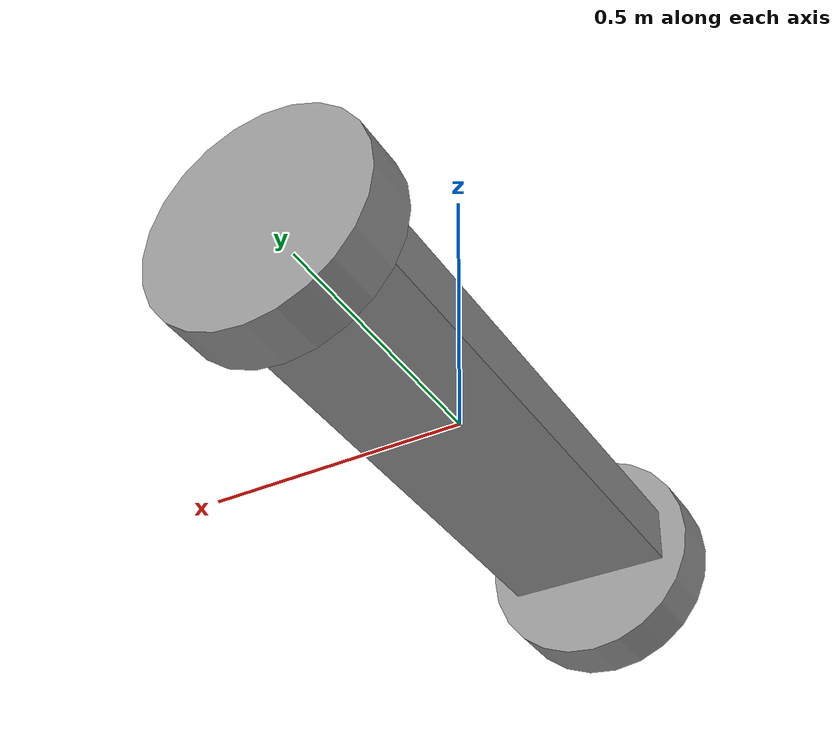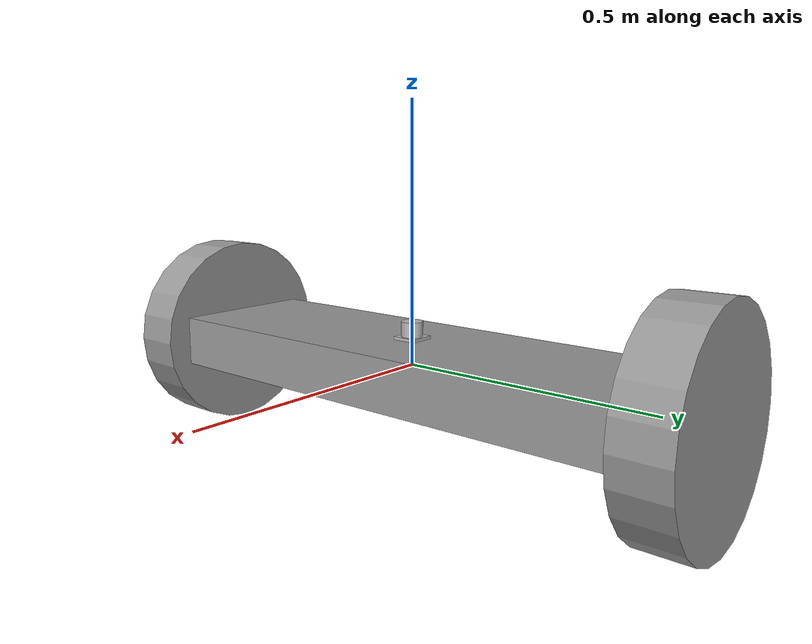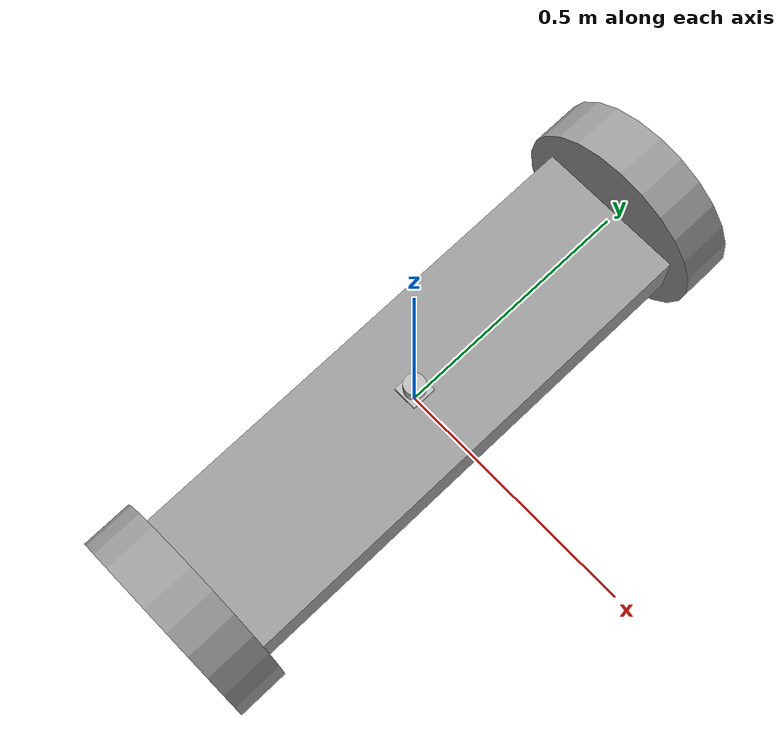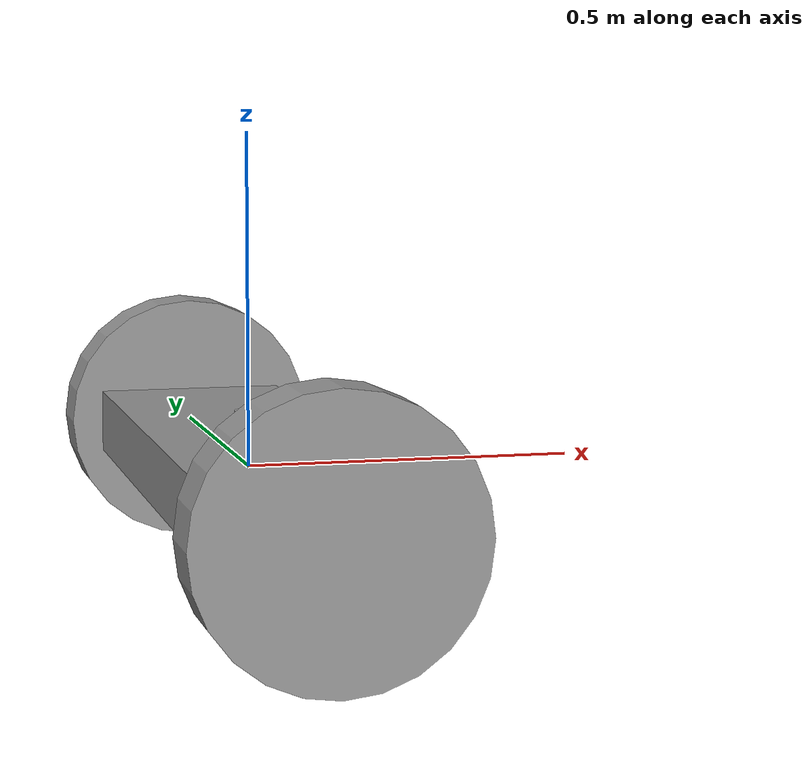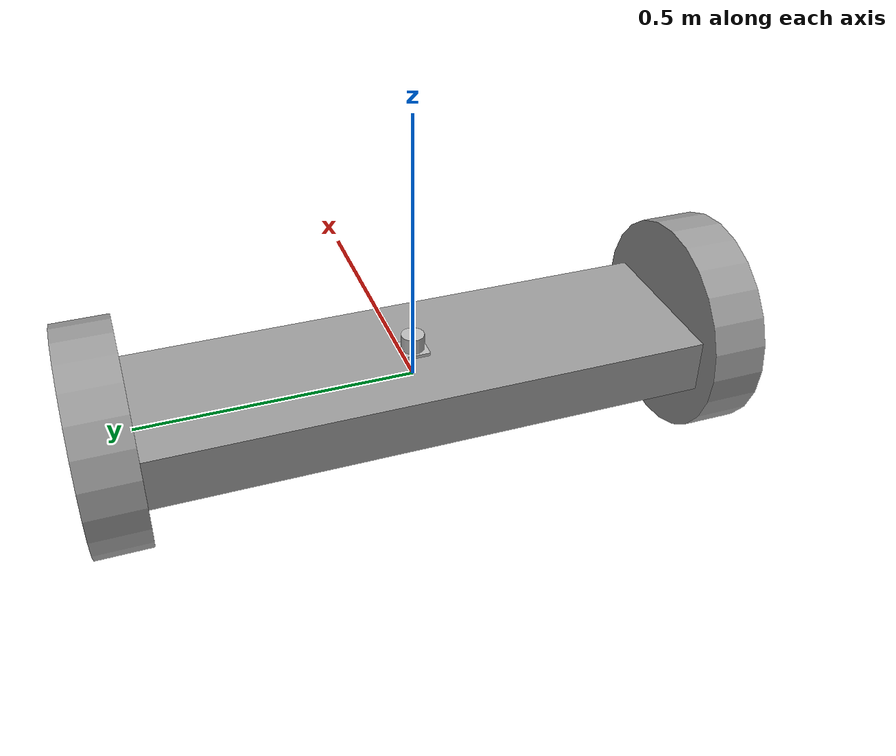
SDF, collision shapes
<?xml version='1.0'?>
<sdf version='1.6'>
  <model name='Sensor_mobile'>
    <link name='link_0'>
      <pose frame=''>0 0 0 0 -0 0</pose>
      <inertial>
        <mass>1</mass>
        <inertia>
          <ixx>0.166667</ixx>
          <ixy>0</ixy>
          <ixz>0</ixz>
          <iyy>0.166667</iyy>
          <iyz>0</iyz>
          <izz>0.166667</izz>
        </inertia>
        <pose frame=''>0 0 0 0 -0 0</pose>
      </inertial>
      <gravity>1</gravity>
      <self_collide>0</self_collide>
      <kinematic>0</kinematic>
      <visual name='visual'>
        <pose frame=''>0 0 0 0 -0 0</pose>
        <geometry>
          <box>
            <size>0.3 1 0.1</size>
          </box>
        </geometry>
        <material>
          <lighting>1</lighting>
          <script>
            <uri>file://media/materials/scripts/gazebo.material</uri>
            <name>Gazebo/Grey</name>
          </script>
          <ambient>0.3 0.3 0.3 1</ambient>
          <diffuse>0.7 0.7 0.7 1</diffuse>
          <specular>0.01 0.01 0.01 1</specular>
          <emissive>0 0 0 1</emissive>
          <shader type='vertex'>
            <normal_map>__default__</normal_map>
          </shader>
        </material>
        <transparency>0</transparency>
        <cast_shadows>1</cast_shadows>
      </visual>
      <collision name='collision'>
        <laser_retro>0</laser_retro>
        <max_contacts>10</max_contacts>
        <pose frame=''>0 0 0 0 -0 0</pose>
        <geometry>
          <box>
            <size>0.3 1 0.1</size>
          </box>
        </geometry>
        <surface>
          <friction>
            <ode>
              <mu>1</mu>
              <mu2>1</mu2>
              <fdir1>0 0 0</fdir1>
              <slip1>0</slip1>
              <slip2>0</slip2>
            </ode>
            <torsional>
              <coefficient>1</coefficient>
              <patch_radius>0</patch_radius>
              <surface_radius>0</surface_radius>
              <use_patch_radius>1</use_patch_radius>
              <ode>
                <slip>0</slip>
              </ode>
            </torsional>
          </friction>
          <bounce>
            <restitution_coefficient>0</restitution_coefficient>
            <threshold>1e+06</threshold>
          </bounce>
          <contact>
            <collide_without_contact>0</collide_without_contact>
            <collide_without_contact_bitmask>1</collide_without_contact_bitmask>
            <collide_bitmask>1</collide_bitmask>
            <ode>
              <soft_cfm>0</soft_cfm>
              <soft_erp>0.2</soft_erp>
              <kp>1e+13</kp>
              <kd>1</kd>
              <max_vel>0.01</max_vel>
              <min_depth>0</min_depth>
            </ode>
            <bullet>
              <split_impulse>1</split_impulse>
              <split_impulse_penetration_threshold>-0.01</split_impulse_penetration_threshold>
              <soft_cfm>0</soft_cfm>
              <soft_erp>0.2</soft_erp>
              <kp>1e+13</kp>
              <kd>1</kd>
            </bullet>
          </contact>
        </surface>
      </collision>
    </link>
    <link name='link_2'>
      <pose frame=''>0 -0.550019 0 1.5707 -0 0</pose>
      <inertial>
        <mass>1</mass>link
        <inertia>
          <ixx>0.145833</ixx>
          <ixy>0</ixy>
          <ixz>0</ixz>
          <iyy>0.145833</iyy>
          <iyz>0</iyz>
          <izz>0.125</izz>
        </inertia>
        <pose frame=''>0 0 0 0 -0 0</pose>
      </inertial>
      <gravity>1</gravity>
      <self_collide>0</self_collide>
      <kinematic>0</kinematic>
      <visual name='visual'>
        <pose frame=''>0 0 0 0 -0 0</pose>
        <geometry>
          <cylinder>
            <radius>0.2</radius>
            <length>0.1</length>
          </cylinder>
        </geometry>
        <material>
          <lighting>1</lighting>
          <script>
            <uri>file://media/materials/scripts/gazebo.material</uri>
            <name>Gazebo/Grey</name>
          </script>
          <ambient>0.3 0.3 0.3 1</ambient>
          <diffuse>0.7 0.7 0.7 1</diffuse>
          <specular>0.01 0.01 0.01 1</specular>
          <emissive>0 0 0 1</emissive>
          <shader type='vertex'>
            <normal_map>__default__</normal_map>
          </shader>
        </material>
        <transparency>0</transparency>
        <cast_shadows>1</cast_shadows>
      </visual>
      <collision name='collision'>
        <laser_retro>0</laser_retro>
        <max_contacts>10</max_contacts>
        <pose frame=''>0 0 0 0 -0 0</pose>
        <geometry>
          <cylinder>
            <radius>0.2</radius>
            <length>0.1</length>
          </cylinder>
        </geometry>
        <surface>
          <friction>
            <ode>
              <mu>1</mu>
              <mu2>1</mu2>
              <fdir1>0 0 0</fdir1>
              <slip1>0</slip1>
              <slip2>0</slip2>
            </ode>
            <torsional>
              <coefficient>1</coefficient>
              <patch_radius>0</patch_radius>
              <surface_radius>0</surface_radius>
              <use_patch_radius>1</use_patch_radius>
              <ode>
                <slip>0</slip>
              </ode>
            </torsional>
          </friction>
          <bounce>
            <restitution_coefficient>0</restitution_coefficient>
            <threshold>1e+06</threshold>
          </bounce>
          <contact>
            <collide_without_contact>0</collide_without_contact>
            <collide_without_contact_bitmask>1</collide_without_contact_bitmask>
            <collide_bitmask>1</collide_bitmask>
            <ode>
              <soft_cfm>0</soft_cfm>
              <soft_erp>0.2</soft_erp>
              <kp>1e+13</kp>
              <kd>1</kd>
              <max_vel>0.01</max_vel>
              <min_depth>0</min_depth>
            </ode>
            <bullet>
              <split_impulse>1</split_impulse>
              <split_impulse_penetration_threshold>-0.01</split_impulse_penetration_threshold>
              <soft_cfm>0</soft_cfm>
              <soft_erp>0.2</soft_erp>
              <kp>1e+13</kp>
              <kd>1</kd>
            </bullet>
          </contact>
        </surface>
      </collision>
    </link>
    <link name='link_2_clone'>
      <pose frame=''>0 0.550019 0 1.5707 -0 0</pose>
      <inertial>
        <mass>1</mass>
        <inertia>
          <ixx>0.145833</ixx>
          <ixy>0</ixy>
          <ixz>0</ixz>
          <iyy>0.145833</iyy>
          <iyz>0</iyz>
          <izz>0.125</izz>
        </inertia>
        <pose frame=''>0 0 0 0 -0 0</pose>
      </inertial>
      <self_collide>0</self_collide>
      <kinematic>0</kinematic>
      <visual name='visual'>
        <pose frame=''>0 0 0 0 -0 0</pose>
        <geometry>
          <cylinder>
            <radius>0.2</radius>
            <length>0.1</length>
          </cylinder>
        </geometry>
        <material>
          <lighting>1</lighting>
          <script>
            <uri>file://media/materials/scripts/gazebo.material</uri>
            <name>Gazebo/Grey</name>
          </script>
          <ambient>0.3 0.3 0.3 1</ambient>
          <diffuse>0.7 0.7 0.7 1</diffuse>
          <specular>0.01 0.01 0.01 1</specular>
          <emissive>0 0 0 1</emissive>
          <shader type='vertex'>
            <normal_map>__default__</normal_map>
          </shader>
        </material>
        <transparency>0</transparency>
        <cast_shadows>1</cast_shadows>
      </visual>
      <collision name='collision'>
        <laser_retro>0</laser_retro>
        <max_contacts>10</max_contacts>
        <pose frame=''>0 0 0 0 -0 0</pose>
        <geometry>
          <cylinder>
            <radius>0.2</radius>
            <length>0.1</length>
          </cylinder>
        </geometry>
        <surface>
          <friction>
            <ode>
              <mu>1</mu>
              <mu2>1</mu2>
              <fdir1>0 0 0</fdir1>
              <slip1>0</slip1>
              <slip2>0</slip2>
            </ode>
            <torsional>
              <coefficient>1</coefficient>
              <patch_radius>0</patch_radius>
              <surface_radius>0</surface_radius>
              <use_patch_radius>1</use_patch_radius>
              <ode>
                <slip>0</slip>
              </ode>
            </torsional>
          </friction>
          <bounce>
            <restitution_coefficient>0</restitution_coefficient>
            <threshold>1e+06</threshold>
          </bounce>
          <contact>
            <collide_without_contact>0</collide_without_contact>
            <collide_without_contact_bitmask>1</collide_without_contact_bitmask>
            <collide_bitmask>1</collide_bitmask>
            <ode>
              <soft_cfm>0</soft_cfm>
              <soft_erp>0.2</soft_erp>
              <kp>1e+13</kp>
              <kd>1</kd>
              <max_vel>0.01</max_vel>
              <min_depth>0</min_depth>
            </ode>
            <bullet>
              <split_impulse>1</split_impulse>
              <split_impulse_penetration_threshold>-0.01</split_impulse_penetration_threshold>
              <soft_cfm>0</soft_cfm>
              <soft_erp>0.2</soft_erp>
              <kp>1e+13</kp>
              <kd>1</kd>
            </bullet>
          </contact>
        </surface>
      </collision>
    </link>
    <joint name='link_0_JOINT_1' type='revolute'>
      <parent>link_0</parent>
      <child>link_2</child>
      <pose frame=''>0 0 0 0 -0 0</pose>
      <axis>
        <xyz>0 0 1</xyz>
        <use_parent_model_frame>0</use_parent_model_frame>
        <limit>
          <lower>-1.79769e+308</lower>
          <upper>1.79769e+308</upper>
          <effort>-1</effort>
          <velocity>-1</velocity>
        </limit>
        <dynamics>
          <spring_reference>0</spring_reference>
          <spring_stiffness>0</spring_stiffness>
          <damping>0</damping>
        </dynamics>
      </axis>
      <physics>
        <ode>
          <limit>
            <cfm>0</cfm>
            <erp>0.2</erp>
          </limit>
          <suspension>
            <cfm>0</cfm>
            <erp>0.2</erp>
          </suspension>
        </ode>
      </physics>
    </joint>
    <joint name='link_0_JOINT_2' type='revolute'>
      <parent>link_0</parent>
      <child>link_2_clone</child>
      <pose frame=''>0 0 0 0 -0 0</pose>
      <axis>
        <xyz>0 0 1</xyz>
        <use_parent_model_frame>0</use_parent_model_frame>
        <limit>
          <lower>-1.79769e+308</lower>
          <upper>1.79769e+308</upper>
          <effort>-1</effort>
          <velocity>-1</velocity>
        </limit>
        <dynamics>
          <spring_reference>0</spring_reference>
          <spring_stiffness>0</spring_stiffness>
          <damping>0</damping>
        </dynamics>
      </axis>
      <physics>
        <ode>
          <limit>
            <cfm>0</cfm>
            <erp>0.2</erp>
          </limit>
          <suspension>
            <cfm>0</cfm>
            <erp>0.2</erp>
          </suspension>
        </ode>
      </physics>
    </joint>
    <static>0</static>
    <allow_auto_disable>1</allow_auto_disable>
    <include>
          <uri>model://hokuyo</uri>
          <pose>0 0 0.05 0 0 0</pose>
    </include>
    <joint name="hokuyo_joint" type="fixed">
          <child>hokuyo::link</child>
          <parent>link_0</parent>
    </joint>
  </model>
</sdf>

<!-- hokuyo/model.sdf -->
<sdf version="1.5">
  <model name="hokuyo">
    <pose>0 0 0.035 0 0 0</pose>
    <link name="link">
      <inertial>
        <mass>0.1</mass>
      </inertial>
      <visual name="visual">
        <geometry>
          <mesh>
            <uri>model://../model_source/models/hokuyo/meshes/hokuyo.dae</uri>
          </mesh>
        </geometry>
      </visual>
      <collision name="collision-base">
        <pose>0 0 -0.0145 0 0 0</pose>
        <geometry>
          <box>
            <size>0.05 0.05 0.041</size>
          </box>
        </geometry>
      </collision>
      <collision name="collision-top">
        <pose>0 0 0.0205 0 0 0</pose>
        <geometry>
          <cylinder>
            <radius>0.021</radius>
            <length>0.029</length>
          </cylinder>
        </geometry>
      </collision>
      <sensor name="laser" type="ray">
        <pose>0.01 0 0.0175 0 -0 0</pose>
        <ray>
          <scan>
            <horizontal>
              <samples>640</samples>
              <resolution>1</resolution>
              <min_angle>-2.26889</min_angle>
              <max_angle>2.268899</max_angle>
            </horizontal>
          </scan>
          <range>
            <min>0.08</min>
            <max>10</max>
            <resolution>0.01</resolution>
          </range>
        </ray>
        <plugin name="laser" filename="libRayPlugin.so" />
        <always_on>1</always_on>
        <update_rate>30</update_rate>
        <visualize>true</visualize>
      </sensor>
    </link>
  </model>
</sdf>
